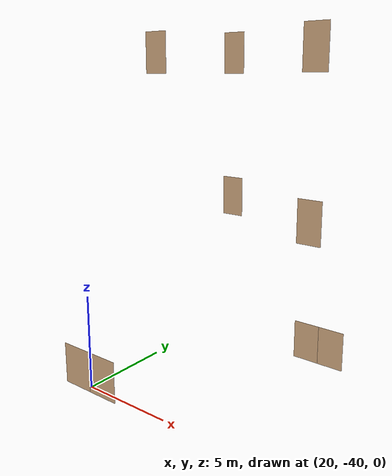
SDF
<sdf version="1.7">
 <world name="sim_world">
  <model name="L1_door3">
   <pose>20.334155710474544 -40.40725483879361 0.0 0 0 -3.137402798278724</pose>
   <link name="right">
    <pose>0.9069965354571369 0 1.11 0 0 0</pose>
    <visual name="right_visual">
     <geometry><box><size>1.8039930709142737 0.03 2.2</size></box></geometry>
     <material>
      <ambient>0.5 0.25 0 0.6</ambient>
      <diffuse>0.5 0.25 0 0.6</diffuse>
      <pbr><metal><metalness>0.0</metalness></metal></pbr>
     </material>
    </visual>
    <collision name="right_collision">
     <geometry><box><size>1.8039930709142737 0.03 2.2</size></box></geometry>
     <surface><contact><collide_bitmask>0x02</collide_bitmask></contact></surface>
    </collision>
    <inertial>
     <mass>50.0</mass>
     <inertia><ixx>20.17041666666667</ixx><iyy>33.726629166277974</iyy><izz>13.563712499611302</izz></inertia>
    </inertial>
   </link>
   <joint name="right_joint" type="prismatic">
    <parent>world</parent>
    <child>right</child>
    <axis>
     <xyz>1 0 0</xyz>
     <limit><lower>0.0</lower><upper>1.8139930709142738</upper><effort>500.0</effort></limit>
    </axis>
   </joint>
   <link name="left">
    <pose>-0.9069965354571369 0 1.11 0 0 0</pose>
    <visual name="left_visual">
     <geometry><box><size>1.8039930709142737 0.03 2.2</size></box></geometry>
     <material>
      <ambient>0.5 0.25 0 0.6</ambient>
      <diffuse>0.5 0.25 0 0.6</diffuse>
      <pbr><metal><metalness>0.0</metalness></metal></pbr>
     </material>
    </visual>
    <collision name="left_collision">
     <geometry><box><size>1.8039930709142737 0.03 2.2</size></box></geometry>
     <surface><contact><collide_bitmask>0x02</collide_bitmask></contact></surface>
    </collision>
    <inertial>
     <mass>50.0</mass>
     <inertia><ixx>20.17041666666667</ixx><iyy>33.726629166277974</iyy><izz>13.563712499611302</izz></inertia>
    </inertial>
   </link>
   <joint name="left_joint" type="prismatic">
    <parent>world</parent>
    <child>left</child>
    <axis>
     <xyz>1 0 0</xyz>
     <limit><lower>-1.8139930709142738</lower><upper>0.0</upper><effort>500.0</effort></limit>
    </axis>
   </joint>
   <plugin name="register_component" filename="libregister_component.so">
    <component name="Door">
     <v_max_door>0.2</v_max_door>
     <a_max_door>0.2</a_max_door>
     <a_nom_door>0.08</a_nom_door>
     <dx_min_door>0.001</dx_min_door>
     <f_max_door>100.0</f_max_door>
     <ros_interface>true</ros_interface>
     <door name="L1_door3" type="DoubleSlidingDoor" left_joint_name="left_joint" right_joint_name="right_joint"/>
    </component>
   </plugin>
  </model>
  <model name="L1_door5">
   <pose>28.079493196697264 -30.43738230505557 0.0 0 0 -0.0023958500301941633</pose>
   <link name="right">
    <pose>0.7494993011996198 0 1.11 0 0 0</pose>
    <visual name="right_visual">
     <geometry><box><size>1.4889986023992396 0.03 2.2</size></box></geometry>
     <material>
      <ambient>0.5 0.25 0 0.6</ambient>
      <diffuse>0.5 0.25 0 0.6</diffuse>
      <pbr><metal><metalness>0.0</metalness></metal></pbr>
     </material>
    </visual>
    <collision name="right_collision">
     <geometry><box><size>1.4889986023992396 0.03 2.2</size></box></geometry>
     <surface><contact><collide_bitmask>0x02</collide_bitmask></contact></surface>
    </collision>
    <inertial>
     <mass>50.0</mass>
     <inertia><ixx>20.17041666666667</ixx><iyy>29.404653491445373</iyy><izz>9.241736824778705</izz></inertia>
    </inertial>
   </link>
   <joint name="right_joint" type="prismatic">
    <parent>world</parent>
    <child>right</child>
    <axis>
     <xyz>1 0 0</xyz>
     <limit><lower>0.0</lower><upper>1.4989986023992397</upper><effort>500.0</effort></limit>
    </axis>
   </joint>
   <link name="left">
    <pose>-0.7494993011996198 0 1.11 0 0 0</pose>
    <visual name="left_visual">
     <geometry><box><size>1.4889986023992396 0.03 2.2</size></box></geometry>
     <material>
      <ambient>0.5 0.25 0 0.6</ambient>
      <diffuse>0.5 0.25 0 0.6</diffuse>
      <pbr><metal><metalness>0.0</metalness></metal></pbr>
     </material>
    </visual>
    <collision name="left_collision">
     <geometry><box><size>1.4889986023992396 0.03 2.2</size></box></geometry>
     <surface><contact><collide_bitmask>0x02</collide_bitmask></contact></surface>
    </collision>
    <inertial>
     <mass>50.0</mass>
     <inertia><ixx>20.17041666666667</ixx><iyy>29.404653491445373</iyy><izz>9.241736824778705</izz></inertia>
    </inertial>
   </link>
   <joint name="left_joint" type="prismatic">
    <parent>world</parent>
    <child>left</child>
    <axis>
     <xyz>1 0 0</xyz>
     <limit><lower>-1.4989986023992397</lower><upper>0.0</upper><effort>500.0</effort></limit>
    </axis>
   </joint>
   <plugin name="register_component" filename="libregister_component.so">
    <component name="Door">
     <v_max_door>0.2</v_max_door>
     <a_max_door>0.2</a_max_door>
     <a_nom_door>0.08</a_nom_door>
     <dx_min_door>0.001</dx_min_door>
     <f_max_door>100.0</f_max_door>
     <ros_interface>true</ros_interface>
     <door name="L1_door5" type="DoubleSlidingDoor" left_joint_name="left_joint" right_joint_name="right_joint"/>
    </component>
   </plugin>
  </model>
  <model name="L2_door14">
   <pose>22.582882547846204 -31.092638612981972 8.0 0 0 3.137779488569298</pose>
   <link name="right">
    <pose>0 0 1.11 0 0 0</pose>
    <visual name="right_visual">
     <geometry><box><size>1.2889329745237348 0.03 2.2</size></box></geometry>
     <material>
      <ambient>0.5 0.25 0 0.6</ambient>
      <diffuse>0.5 0.25 0 0.6</diffuse>
      <pbr><metal><metalness>0.0</metalness></metal></pbr>
     </material>
    </visual>
    <collision name="right_collision">
     <geometry><box><size>1.2889329745237348 0.03 2.2</size></box></geometry>
     <surface><contact><collide_bitmask>0x02</collide_bitmask></contact></surface>
    </collision>
    <inertial>
     <mass>50.0</mass>
     <inertia><ixx>20.17041666666667</ixx><iyy>27.088950886727517</iyy><izz>6.926034220060845</izz></inertia>
    </inertial>
   </link>
   <joint name="right_joint" type="revolute">
    <parent>world</parent>
    <child>right</child>
    <axis><xyz>0 0 1</xyz><limit><lower>0</lower><upper>1.57</upper></limit></axis>
    <pose>0.6494664872618674 0 0 0 0 0</pose>
   </joint>
   <plugin name="register_component" filename="libregister_component.so">
    <component name="Door">
     <v_max_door>0.5</v_max_door>
     <a_max_door>0.3</a_max_door>
     <a_nom_door>0.15</a_nom_door>
     <dx_min_door>0.01</dx_min_door>
     <f_max_door>500.0</f_max_door>
     <ros_interface>true</ros_interface>
     <door name="L2_door14" type="SwingDoor" left_joint_name="empty_joint" right_joint_name="right_joint"/>
    </component>
   </plugin>
  </model>
  <model name="L2_door15">
   <pose>29.19689685453295 -34.1844883615378 8.0 0 0 3.1287318603676484</pose>
   <link name="right">
    <pose>0 0 1.11 0 0 0</pose>
    <visual name="right_visual">
     <geometry><box><size>1.2884785147293154 0.03 2.2</size></box></geometry>
     <material>
      <ambient>0.5 0.25 0 0.6</ambient>
      <diffuse>0.5 0.25 0 0.6</diffuse>
      <pbr><metal><metalness>0.0</metalness></metal></pbr>
     </material>
    </visual>
    <collision name="right_collision">
     <geometry><box><size>1.2884785147293154 0.03 2.2</size></box></geometry>
     <surface><contact><collide_bitmask>0x02</collide_bitmask></contact></surface>
    </collision>
    <inertial>
     <mass>50.0</mass>
     <inertia><ixx>20.17041666666667</ixx><iyy>27.0840703454961</iyy><izz>6.921153678829428</izz></inertia>
    </inertial>
   </link>
   <joint name="right_joint" type="revolute">
    <parent>world</parent>
    <child>right</child>
    <axis><xyz>0 0 -1</xyz><limit><lower>0</lower><upper>1.57</upper></limit></axis>
    <pose>0.6492392573646577 0 0 0 0 0</pose>
   </joint>
   <plugin name="register_component" filename="libregister_component.so">
    <component name="Door">
     <v_max_door>0.5</v_max_door>
     <a_max_door>0.3</a_max_door>
     <a_nom_door>0.15</a_nom_door>
     <dx_min_door>0.01</dx_min_door>
     <f_max_door>500.0</f_max_door>
     <ros_interface>true</ros_interface>
     <door name="L2_door15" type="SwingDoor" left_joint_name="empty_joint" right_joint_name="right_joint"/>
    </component>
   </plugin>
  </model>
  <model name="L3_door5">
   <pose>19.62055855578882 -34.21478433126707 16.0 0 0 3.1365461417546308</pose>
   <link name="right">
    <pose>0 0 1.11 0 0 0</pose>
    <visual name="right_visual">
     <geometry><box><size>1.4278667928054123 0.03 2.2</size></box></geometry>
     <material>
      <ambient>0.5 0.25 0 0.6</ambient>
      <diffuse>0.5 0.25 0 0.6</diffuse>
      <pbr><metal><metalness>0.0</metalness></metal></pbr>
     </material>
    </visual>
    <collision name="right_collision">
     <geometry><box><size>1.4278667928054123 0.03 2.2</size></box></geometry>
     <surface><contact><collide_bitmask>0x02</collide_bitmask></contact></surface>
    </collision>
    <inertial>
     <mass>50.0</mass>
     <inertia><ixx>20.17041666666667</ixx><iyy>28.661681574985064</iyy><izz>8.498764908318392</izz></inertia>
    </inertial>
   </link>
   <joint name="right_joint" type="revolute">
    <parent>world</parent>
    <child>right</child>
    <axis><xyz>0 0 -1</xyz><limit><lower>0</lower><upper>1.57</upper></limit></axis>
    <pose>0.7189333964027061 0 0 0 0 0</pose>
   </joint>
   <plugin name="register_component" filename="libregister_component.so">
    <component name="Door">
     <v_max_door>0.5</v_max_door>
     <a_max_door>0.3</a_max_door>
     <a_nom_door>0.15</a_nom_door>
     <dx_min_door>0.01</dx_min_door>
     <f_max_door>500.0</f_max_door>
     <ros_interface>true</ros_interface>
     <door name="L3_door5" type="SwingDoor" left_joint_name="empty_joint" right_joint_name="right_joint"/>
    </component>
   </plugin>
  </model>
  <model name="L3_door14">
   <pose>22.582882547846204 -31.092638612981972 16.0 0 0 3.137779488569298</pose>
   <link name="right">
    <pose>0 0 1.11 0 0 0</pose>
    <visual name="right_visual">
     <geometry><box><size>1.2889329745237348 0.03 2.2</size></box></geometry>
     <material>
      <ambient>0.5 0.25 0 0.6</ambient>
      <diffuse>0.5 0.25 0 0.6</diffuse>
      <pbr><metal><metalness>0.0</metalness></metal></pbr>
     </material>
    </visual>
    <collision name="right_collision">
     <geometry><box><size>1.2889329745237348 0.03 2.2</size></box></geometry>
     <surface><contact><collide_bitmask>0x02</collide_bitmask></contact></surface>
    </collision>
    <inertial>
     <mass>50.0</mass>
     <inertia><ixx>20.17041666666667</ixx><iyy>27.088950886727517</iyy><izz>6.926034220060845</izz></inertia>
    </inertial>
   </link>
   <joint name="right_joint" type="revolute">
    <parent>world</parent>
    <child>right</child>
    <axis><xyz>0 0 1</xyz><limit><lower>0</lower><upper>1.57</upper></limit></axis>
    <pose>0.6494664872618674 0 0 0 0 0</pose>
   </joint>
   <plugin name="register_component" filename="libregister_component.so">
    <component name="Door">
     <v_max_door>0.5</v_max_door>
     <a_max_door>0.3</a_max_door>
     <a_nom_door>0.15</a_nom_door>
     <dx_min_door>0.01</dx_min_door>
     <f_max_door>500.0</f_max_door>
     <ros_interface>true</ros_interface>
     <door name="L3_door14" type="SwingDoor" left_joint_name="empty_joint" right_joint_name="right_joint"/>
    </component>
   </plugin>
  </model>
  <model name="L3_door15">
   <pose>29.19689685453295 -34.1844883615378 16.0 0 0 3.1287318603676484</pose>
   <link name="right">
    <pose>0 0 1.11 0 0 0</pose>
    <visual name="right_visual">
     <geometry><box><size>1.2884785147293154 0.03 2.2</size></box></geometry>
     <material>
      <ambient>0.5 0.25 0 0.6</ambient>
      <diffuse>0.5 0.25 0 0.6</diffuse>
      <pbr><metal><metalness>0.0</metalness></metal></pbr>
     </material>
    </visual>
    <collision name="right_collision">
     <geometry><box><size>1.2884785147293154 0.03 2.2</size></box></geometry>
     <surface><contact><collide_bitmask>0x02</collide_bitmask></contact></surface>
    </collision>
    <inertial>
     <mass>50.0</mass>
     <inertia><ixx>20.17041666666667</ixx><iyy>27.0840703454961</iyy><izz>6.921153678829428</izz></inertia>
    </inertial>
   </link>
   <joint name="right_joint" type="revolute">
    <parent>world</parent>
    <child>right</child>
    <axis><xyz>0 0 -1</xyz><limit><lower>0</lower><upper>1.57</upper></limit></axis>
    <pose>0.6492392573646577 0 0 0 0 0</pose>
   </joint>
   <plugin name="register_component" filename="libregister_component.so">
    <component name="Door">
     <v_max_door>0.5</v_max_door>
     <a_max_door>0.3</a_max_door>
     <a_nom_door>0.15</a_nom_door>
     <dx_min_door>0.01</dx_min_door>
     <f_max_door>500.0</f_max_door>
     <ros_interface>true</ros_interface>
     <door name="L3_door15" type="SwingDoor" left_joint_name="empty_joint" right_joint_name="right_joint"/>
    </component>
   </plugin>
  </model>
 </world>
</sdf>
